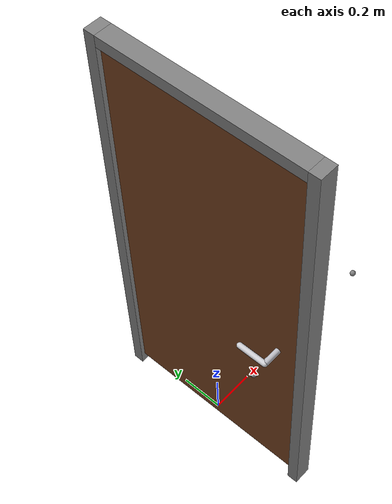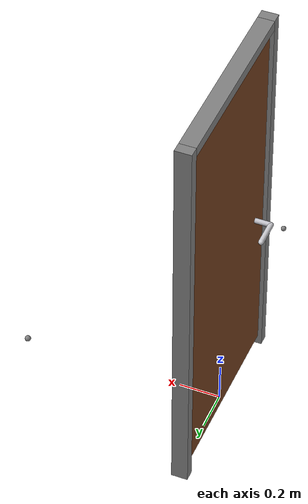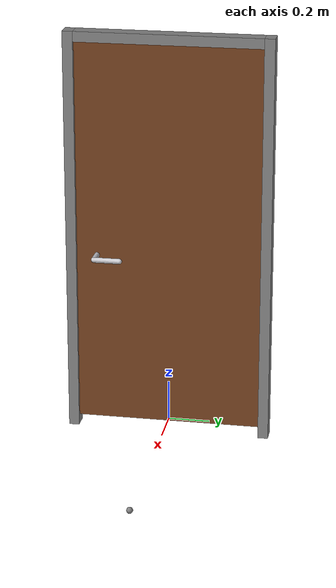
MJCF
<mujoco model="doordog_materialized_door">
  <compiler angle="radian" coordinate="local" />
  <option timestep="0.005" gravity="0 0 -9.81" />
  <default>
    <default class="door">
      <geom friction="1 0.005 0.0001" condim="4" density="0" />
    </default>
  </default>
  <worldbody>
    <body name="door_root" childclass="door">
      <geom name="door_frame_left" type="box" pos="0 0.475 0.95" size="0.04 0.025 1" />
      <geom name="door_frame_right" type="box" pos="0 -0.475 0.95" size="0.04 0.025 1" />
      <geom name="door_frame_top" type="box" pos="0 0 1.925" size="0.04 0.45 0.025" />
      <body name="door_panel" pos="0 0.45 0">
        <joint name="door_hinge" type="hinge" axis="0 0 1" range="0 2.61799387799" damping="0" frictionloss="0" limited="true" solreflimit="-10000 -100" />
        <inertial pos="0 -0.45 0.95" mass="100" diaginertia="36.8333333333 30.0966666667 6.76333333333" />
        <geom name="door_panel_collision" type="box" pos="0 -0.45 0.95" size="0.02 0.45 0.95" mass="0" rgba="0.45 0.25 0.12 1" />
        <body name="door_handle" pos="0 -0.8 0.85">
          <joint name="handle_hinge" type="hinge" axis="1 0 0" range="0 0.785398163397" damping="0" frictionloss="0" limited="true" solreflimit="-10000 -100" />
          <geom name="handle_axle" type="cylinder" pos="0 0 0" quat="0.707106781187 0 0.707106781187 0" size="0.013 0.0975" mass="0.2" rgba="0.75 0.75 0.78 1" />
          <site name="door_handle_center" pos="0 0 0" size="0.01" />
          <geom name="handle_lever_inside" type="capsule" pos="-0.0975 0.0625 0" quat="0.707106781187 0.707106781187 0 0" size="0.013 0.0625" mass="0.1" rgba="0.8 0.8 0.82 1" />
          <geom name="handle_lever_outside" type="capsule" pos="0.0975 0.0625 0" quat="0.707106781187 0.707106781187 0 0" size="0.013 0.0625" mass="0.1" rgba="0.8 0.8 0.82 1" />
          <site name="door_grasp_target" pos="-0.0975 0.0625 0" size="0.012" rgba="0 1 0 1" />
        </body>
        <site name="door_pregrasp_target" pos="-0.16 -0.8 0.85" size="0.012" />
      </body>
      <site name="door_hinge_axis" pos="0 0.45 0.95" size="0.01 0.95" type="cylinder" />
      <site name="door_passage_center" pos="0 0 0.95" size="0.015" />
      <site name="door_goal" pos="1 0 0" size="0.015" />
      <camera name="handle_outside_closeup" pos="-0.45 -0.35 0.85" xyaxes="0 -1 0 0 0 1" fovy="32" />
      <camera name="handle_inside_closeup" pos="0.45 -0.35 0.85" xyaxes="0 1 0 0 0 1" fovy="32" />
    </body>
  </worldbody>
  <contact>
    <exclude name="exclude_panel_handle_self_collision" body1="door_panel" body2="door_handle" />
    <exclude name="exclude_frame_panel_self_collision" body1="door_root" body2="door_panel" />
    <exclude name="exclude_frame_handle_self_collision" body1="door_root" body2="door_handle" />
  </contact>
  <equality />
  <actuator>
    <position name="door_hinge_capped_position" joint="door_hinge" kp="2" kv="50" ctrlrange="-0.174532925199 2.61799387799" ctrllimited="true" forcerange="-4.5 4.5" forcelimited="true" />
    <position name="handle_capped_position" joint="handle_hinge" kp="50" kv="0.5" ctrlrange="-0.261799387799 0.785398163397" ctrllimited="true" forcerange="-2 2" forcelimited="true" />
  </actuator>
  <keyframe>
    <key name="door_closed" qpos="0 0" ctrl="-0.174532925199 -0.261799387799" />
  </keyframe>
</mujoco>
